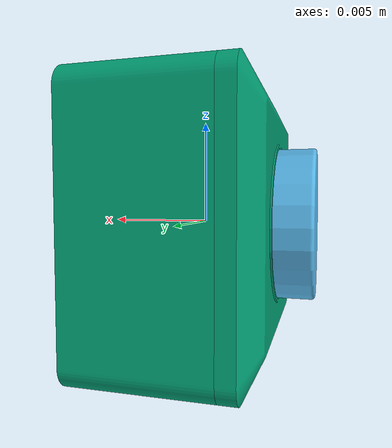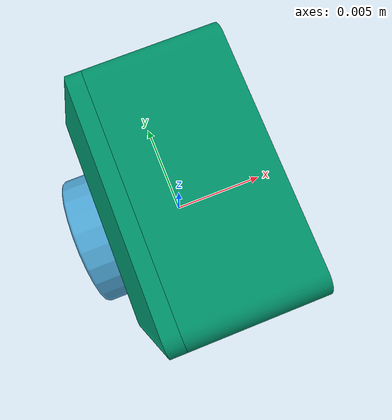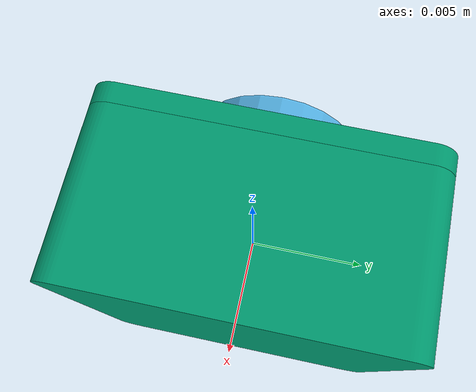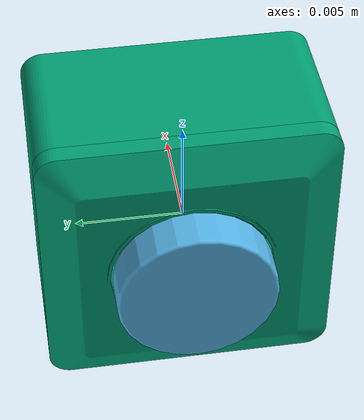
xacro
<robot name="partnet_693a88bbdbb6c607199f2eca998ded6d" xmlns:xacro="http://wiki.ros.org/xacro">
	<xacro:property name="scale" value="100" /><link name="base" />
	<link name="link_0">
		<visual name="switch-1">
			<origin xyz="${0.012274097321978567 / scale} ${0.007633000011528805 / scale} ${0 / scale}" />
			<geometry>
				<mesh filename="package://switch_description/urdf/100911/textured_objs/original-3.obj" scale="${1 / scale} ${1 / scale} ${1 / scale}" />
			</geometry>
		</visual>
		<collision>
			<origin xyz="${0.012274097321978567 / scale} ${0.007633000011528805 / scale} ${0 / scale}" />
			<geometry>
				<mesh filename="package://switch_description/urdf/100911/textured_objs/original-3.obj" scale="${1 / scale} ${1 / scale} ${1 / scale}" />
			</geometry>
		</collision>
	</link>
	<joint name="joint_0" type="continuous">
		<origin xyz="${-0.012274097321978567 / scale} ${-0.007633000011528805 / scale} ${0 / scale}" />
		<axis xyz="0 0 1" />
		<child link="link_0" />
		<parent link="link_1" />
	</joint>
	<link name="link_1">
		<visual name="base_body-2">
			<origin xyz="${0 / scale} ${0 / scale} ${0 / scale}" />
			<geometry>
				<mesh filename="package://switch_description/urdf/100911/textured_objs/original-2.obj" scale="${1 / scale} ${1 / scale} ${1 / scale}" />
			</geometry>
		</visual>
		<visual name="base_body-2">
			<origin xyz="${0 / scale} ${0 / scale} ${0 / scale}" />
			<geometry>
				<mesh filename="package://switch_description/urdf/100911/textured_objs/original-1.obj" scale="${1 / scale} ${1 / scale} ${1 / scale}" />
			</geometry>
		</visual>
		<collision>
			<origin xyz="${0 / scale} ${0 / scale} ${0 / scale}" />
			<geometry>
				<mesh filename="package://switch_description/urdf/100911/textured_objs/original-2.obj" scale="${1 / scale} ${1 / scale} ${1 / scale}" />
			</geometry>
		</collision>
		<collision>
			<origin xyz="${0 / scale} ${0 / scale} ${0 / scale}" />
			<geometry>
				<mesh filename="package://switch_description/urdf/100911/textured_objs/original-1.obj" scale="${1 / scale} ${1 / scale} ${1 / scale}" />
			</geometry>
		</collision>
	</link>
	<joint name="joint_1" type="fixed">
		<origin rpy="1.570796326794897 0 -1.570796326794897" xyz="${0 / scale} ${0 / scale} ${0 / scale}" />
		<child link="link_1" />
		<parent link="base" />
	</joint>
</robot>
